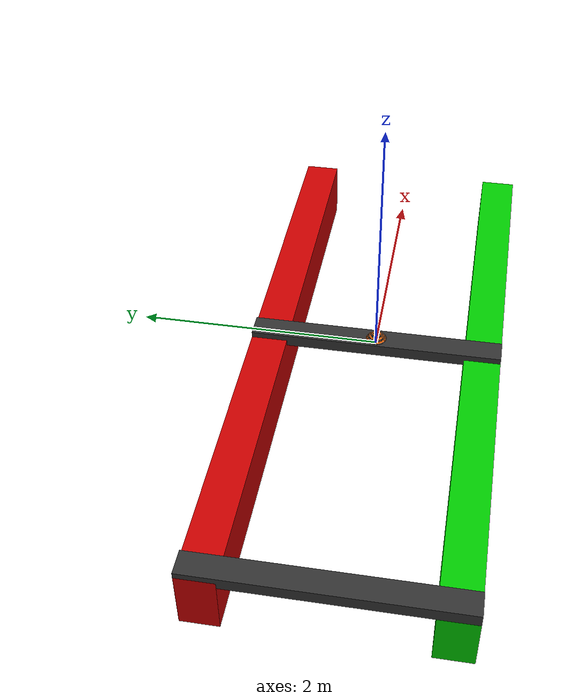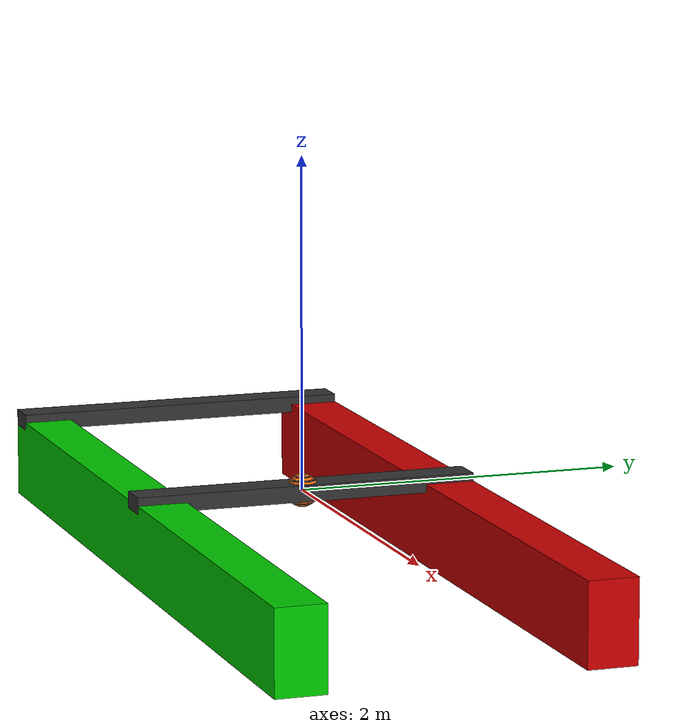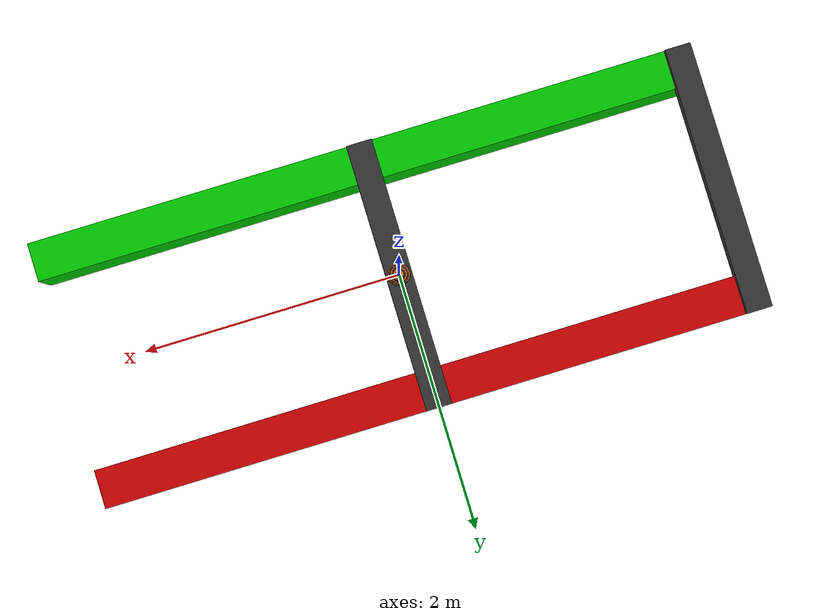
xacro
<?xml version="1.0"?>
<robot name="foilboat" xmlns:xacro="http://www.ros.org/wiki/xacro">
  <xacro:include filename="$(find boat_description_ros_deb)/urdf/materials.xacro" />
  <xacro:include filename="$(find boat_description_ros_deb)/urdf/foilboat_components.xacro" />
  <xacro:include filename="$(find boat_description_ros_deb)/urdf/macros.xacro" />

  <xacro:property name="length" value="5.25" />
  <xacro:property name="width" value="2.59" />

  <xacro:property name="hullMass" value="40" />
  <xacro:property name="hullX" value="${length}" />
  <xacro:property name="hullY" value="0.3" />
  <xacro:property name="hullZ" value="0.5" />

  <xacro:property name="beamMass" value="15" />
  <xacro:property name="beamX" value="0.2" />
  <xacro:property name="beamY" value="${width - hullZ}" />
  <xacro:property name="beamZ" value="0.1" />

  <link name="base_link" />

  <xacro:beam name="front" front="1" />
  <xacro:beam name="back" front="-1"/>

  <xacro:hull name="left" port="1" />
  <xacro:hull name="right" port="-1" />

  <link name="toughsonic_link">
    <visual>
      <origin xyz="0 0 0" rpy="0 0 0"/>
      <geometry>
        <sphere radius="0.1"/>
      </geometry>
      <material name="orange"/>
    </visual>

    <collision>
      <origin xyz="0 0 0" rpy="0 0 0" />
      <geometry>
        <sphere radius="0.1" />
      </geometry>
    </collision>

    <inertial>
      <origin xyz="0 0 0" rpy="0 0 0" />
      <mass value="1" />
      <xacro:sphere_inertia m="1" r="0.1" />
    </inertial>
  </link>

  <joint name="toughsonic_link_joint" type="fixed">
    <parent link="front_beam"/>
    <child link="toughsonic_link"/>
    <origin xyz="0 0 0" rpy="0 0 0"/>
  </joint>

  <link name="sensor_box_link">
    <visual>
      <origin xyz="0 0 0" rpy="0 0 0"/>
      <geometry>
        <sphere radius="0.1"/>
      </geometry>
      <material name="black"/>
    </visual>

    <collision>
      <origin xyz="0 0 0" rpy="0 0 0" />
      <geometry>
        <sphere radius="0.1" />
      </geometry>
    </collision>

    <inertial>
      <origin xyz="0 0 0" rpy="0 0 0" />
      <mass value="1" />
      <xacro:sphere_inertia m="1" r="0.1" />
    </inertial>
  </link>

  <joint name="sensor_box_link_joint" type="fixed">
    <parent link="front_beam" />
    <child link="sensor_box_link" />
    <origin xyz="0 0 0" rpy="0 -0.087 0" />
  </joint>

  <link name="imu_link">
    <visual>
      <origin xyz="0 0 0" rpy="0 0 0"/>
      <geometry>
        <sphere radius="0.1"/>
      </geometry>
      <material name="orange"/>
    </visual>

    <collision>
      <origin xyz="0 0 0" rpy="0 0 0" />
      <geometry>
        <sphere radius="0.1" />
      </geometry>
    </collision>

    <inertial>
      <origin xyz="0 0 0" rpy="0 0 0" />
      <mass value="1" />
      <xacro:sphere_inertia m="1" r="0.1" />
    </inertial>
  </link>

  <joint name="imu_link_joint" type="fixed">
    <parent link="sensor_box_link"/>
    <child link="imu_link"/>
    <origin xyz="0 0 0" rpy="${pi} 0 0"/>
  </joint>

  <!-- GPS -->
  <link name="m8u">
    <visual>
      <origin xyz="0 0 0" rpy="0 0 0"/>
      <geometry>
        <sphere radius="0.1"/>
      </geometry>
      <material name="orange"/>
    </visual>

    <collision>
      <origin xyz="0 0 0" rpy="0 0 0" />
      <geometry>
        <sphere radius="0.1" />
      </geometry>
    </collision>

    <inertial>
      <origin xyz="0 0 0" rpy="0 0 0" />
      <mass value="1" />
      <xacro:sphere_inertia m="1" r="0.1" />
    </inertial>
  </link>

  <joint name="m8u_joint" type="fixed">
    <parent link="sensor_box_link"/>
    <child link="m8u"/>
    <origin xyz="0 0 0" rpy="0 0 0"/>
  </joint>

</robot>

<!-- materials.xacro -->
<robot name="foilboat" xmlns:xacro="http://www.ros.org/wiki/xacro">
    <material name="black">
        <color rgba="0.0 0.0 0.0 1.0"/>
    </material>

    <material name="blue">
        <color rgba="0.0 0.0 0.8 1.0"/>
    </material>

    <material name="green">
        <color rgba="0.0 0.8 0.0 1.0"/>
    </material>

    <material name="grey">
        <color rgba="0.2 0.2 0.2 1.0"/>
    </material>

    <material name="orange">
        <color rgba="${255/255} ${108/255} ${10/255} 1.0"/>
    </material>

    <material name="brown">
        <color rgba="${222/255} ${207/255} ${195/255} 1.0"/>
    </material>

    <material name="red">
        <color rgba="0.8 0.0 0.0 1.0"/>
    </material>

    <material name="white">
        <color rgba="1.0 1.0 1.0 1.0"/>
    </material>
</robot>

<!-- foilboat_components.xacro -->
<robot name="foilboat" xmlns:xacro="http://www.ros.org/wiki/xacro">
  <xacro:include filename="$(find foilboat_description)/urdf/macros.xacro" />

  <xacro:macro name="beam" params="name front">
    <link name="${name}_beam">
      <inertia>
        <origin xyz="0 0 0" rpy="0 0 0"/>
        <mass value="${beamMass}"/>
        <xacro:box_inertia m="${beamMass}" x="${beamX}" y="${beamY}" z="${beamZ}"/>
      </inertia>

      <collision>
        <origin xyz="0 0 0" rpy="0 0 0" />
        <geometry>
          <box size="${beamX} ${beamY} ${beamZ}" />
        </geometry>
      </collision>

      <visual>
        <origin xyz="0 0 0" rpy="0 0 0"/>
        <geometry>
          <box size="${beamX} ${beamY} ${beamZ}"/>
        </geometry>
        <material name="grey"/>
      </visual>
    </link>

    <joint name="${name}_base_joint" type="fixed">
      <parent link="base_link" />
      <child link="${name}_beam" />
      <xacro:if value="${front == 1}">
        <origin xyz="0 0 0" rpy="0 0 0" />
      </xacro:if>
      <xacro:unless value="${front == 1}">
        <origin xyz="${-hullX/2 + beamX/2} 0 0" rpy="0 0 0" />
      </xacro:unless>
    </joint>
  </xacro:macro>

  <xacro:macro name="hull" params="name port">
    <link name="${name}_hull">
      <inertial>
        <origin xyz="0 0 0" rpy="0 0 0"/>
        <mass value="${hullMass}"/>
        <xacro:box_inertia m="${hullMass}" x="${hullX}" y="${hullY}" z="${hullZ}"/>
      </inertial>

      <collision>
        <origin xyz="0 0 0" rpy="0 0 0"/>
        <geometry>
          <box size="${hullX} ${hullY} ${hullZ}"/>
        </geometry>
      </collision>

      <visual>
        <origin xyz="0 0 0" rpy="0 0 0"/>
        <geometry>
          <box size="${hullX} ${hullY} ${hullZ}"/>
        </geometry>

        <!-- Port/Starboard colors -->
        <xacro:if value="${port == 1}">
          <material name="red"/>
        </xacro:if>
        <xacro:unless value="${port == 1}">
          <material name="green"/>
        </xacro:unless>
      </visual>
    </link>

    <joint name="${name}_hull_beam_joint" type="fixed">
      <parent link="front_beam" />
      <child link="${name}_hull" />
      <origin xyz="0 ${port * (beamY/2 - hullY/2)} ${-hullZ/2}" rpy="0 0 0" />
    </joint>
  </xacro:macro>

</robot>

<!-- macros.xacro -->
<robot name="foilboat" xmlns:xacro="http://www.ros.org/wiki/xacro">

    <macro name="cylinder_inertia" params="m r h">
        <inertia  ixx="${m*(3*r*r+h*h)/12}" ixy = "0" ixz = "0"
            iyy="${m*(3*r*r+h*h)/12}" iyz = "0"
            izz="${m*r*r/2}"
        />
    </macro>

    <macro name="box_inertia" params="m x y z">
        <inertia  ixx="${m*(y*y+z*z)/12}" ixy = "0" ixz = "0"
            iyy="${m*(x*x+z*z)/12}" iyz = "0"
            izz="${m*(x*x+z*z)/12}"
        />
    </macro>

    <macro name="sphere_inertia" params="m r">
        <inertia  ixx="${2*m*r*r/5}" ixy = "0" ixz = "0"
            iyy="${2*m*r*r/5}" iyz = "0"
            izz="${2*m*r*r/5}"
        />
    </macro>

    <xacro:macro name="joint_transmission" params="joint_name reduction:=10">
        <transmission name="${joint_name}_transmission">
            <type>transmission_interface/SimpleTransmission</type>
            <joint name="${joint_name}_joint">
                <hardwareInterface>hardware_interface/EffortJointInterface</hardwareInterface>
            </joint>
            <actuator name="${joint_name}_servo">
                <hardwareInterface>EffortJointInterface</hardwareInterface>
                <mechanicalReduction>${reduction}</mechanicalReduction>
            </actuator>
        </transmission>
    </xacro:macro>

    <xacro:macro name="sphere_marker"
        params="name markerX markerY markerZ markerR:=0 markerP:=0 markerY:=0 markerRadius:=0.1"
    >
        <link name="${name}">
            <visual>
                <origin xyz="0 0 0" rpy="0 0 0"/>
                <geometry>
                    <sphere radius="${markerRadius}"/>
                </geometry>
                <material name="orange"/>
            </visual>

            <collision>
                <origin xyz="0 0 0" rpy="0 0 0" />
                <geometry>
                    <sphere radius="${markerRadius}" />
                </geometry>
            </collision>

            <inertial>
                <origin xyz="0 0 0" rpy="0 0 0" />
                <mass value="1" />
                <xacro:sphere_inertia m="1" r="${markerRadius}" />
            </inertial>
        </link>

        <joint name="${name}_joint" type="fixed">
            <parent link="body"/>
            <child link="${name}"/>
            <origin xyz="${markerX} ${markerY} ${markerZ}" rpy="0 0 0"/>
        </joint>
    </xacro:macro>

</robot>
